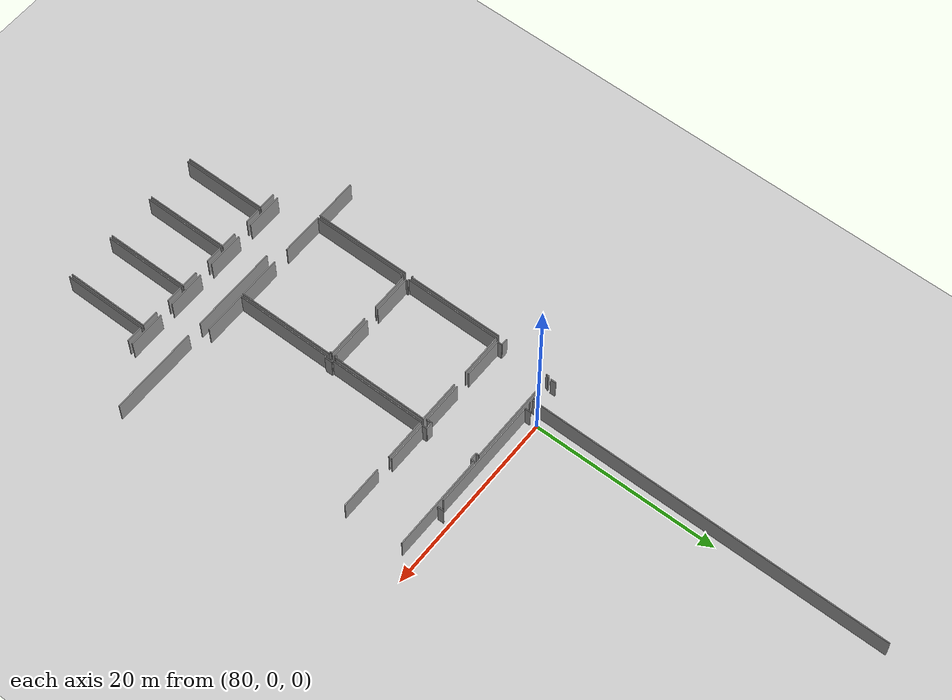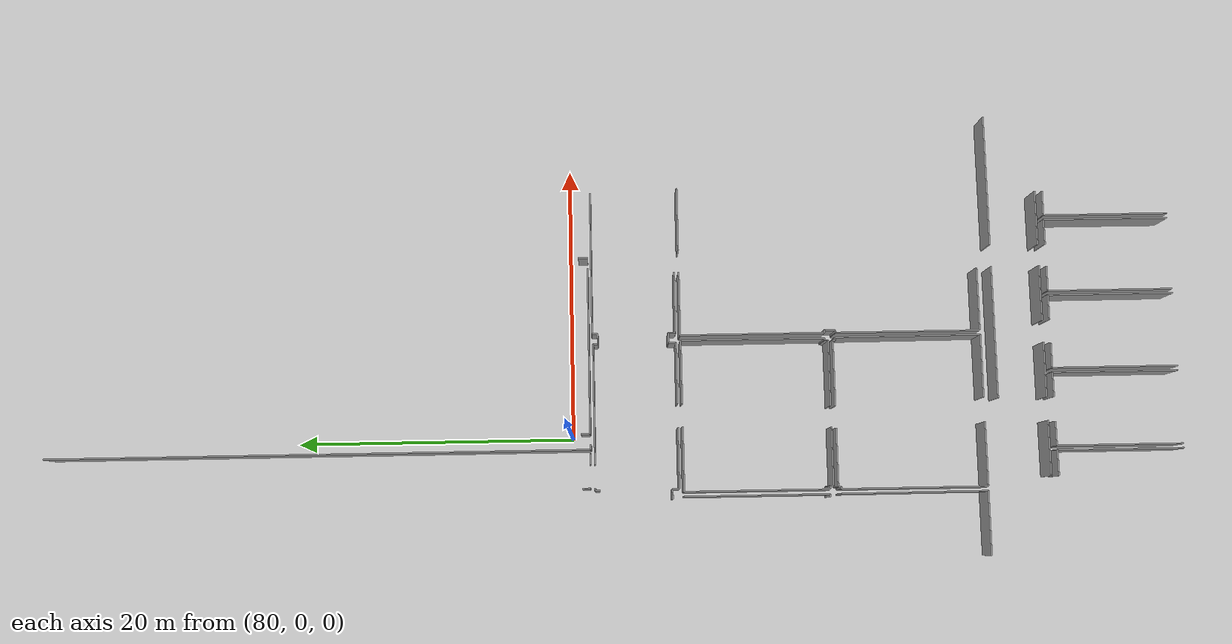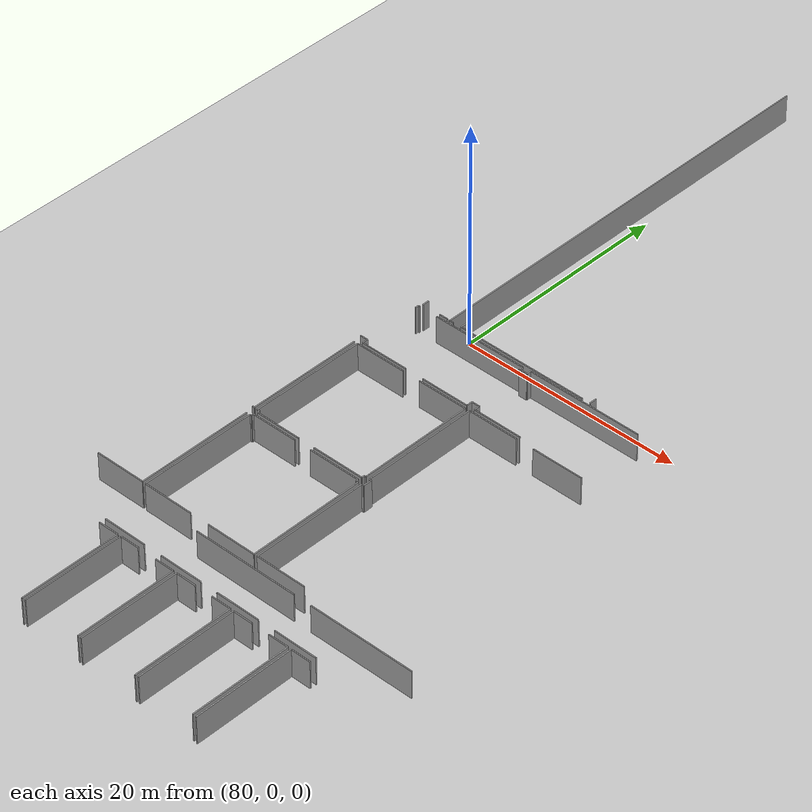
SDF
<sdf version="1.6">
 <world name="default">
  <model name="ground_plane">
   <static>1</static>
   <link name="link">
    <collision name="collision">
     <geometry><plane><normal>0 0 1</normal><size>100 100</size></plane></geometry>
     <surface><friction><ode><mu>100</mu><mu2>50</mu2></ode></friction></surface>
    </collision>
    <visual name="visual">
     <cast_shadows>0</cast_shadows>
     <geometry><plane><normal>0 0 1</normal><size>100 100</size></plane></geometry>
     <material>
      <script><uri>file://media/materials/scripts/gazebo.material</uri><name>Gazebo/Grey</name></script>
     </material>
    </visual>
   </link>
  </model>
  <model name="50015848">
   <static>1</static>
   <link name="Wall_559">
    <collision name="Wall_559_Collision">
     <geometry><box><size>0.348115116493 0.1 2.5</size></box></geometry>
     <pose>0.174057558246 0 1.25 0 0 0</pose>
    </collision>
    <visual name="Wall_559_Visual">
     <pose>0.174057558246 0 1.25 0 0 0</pose>
     <geometry><box><size>0.348115116493 0.1 2.5</size></box></geometry>
     <material>
      <script><uri>file://media/materials/scripts/gazebo.material</uri><name>Gazebo/Grey</name></script>
      <ambient>1 1 1 1</ambient>
     </material>
    </visual>
    <pose>208.043438271 -45.6472289707 0 0 0 1.57079632679</pose>
   </link>
   <link name="Wall_560">
    <collision name="Wall_560_Collision">
     <geometry><box><size>0.159595049762 0.1 2.5</size></box></geometry>
     <pose>0.0797975248812 0 1.25 0 0 0</pose>
    </collision>
    <visual name="Wall_560_Visual">
     <pose>0.0797975248812 0 1.25 0 0 0</pose>
     <geometry><box><size>0.159595049762 0.1 2.5</size></box></geometry>
     <material>
      <script><uri>file://media/materials/scripts/gazebo.material</uri><name>Gazebo/Grey</name></script>
      <ambient>1 1 1 1</ambient>
     </material>
    </visual>
    <pose>208.043438271 -45.2991138542 0 0 0 0.0</pose>
   </link>
   <link name="Wall_561">
    <collision name="Wall_561_Collision">
     <geometry><box><size>8.61407303567 0.1 2.5</size></box></geometry>
     <pose>4.30703651783 0 1.25 0 0 0</pose>
    </collision>
    <visual name="Wall_561_Visual">
     <pose>4.30703651783 0 1.25 0 0 0</pose>
     <geometry><box><size>8.61407303567 0.1 2.5</size></box></geometry>
     <material>
      <script><uri>file://media/materials/scripts/gazebo.material</uri><name>Gazebo/Grey</name></script>
      <ambient>1 1 1 1</ambient>
     </material>
    </visual>
    <pose>209.904788486 -45.2991138542 0 0 0 0.0</pose>
   </link>
   <link name="Wall_562">
    <collision name="Wall_562_Collision">
     <geometry><box><size>0.340756998141 0.1 2.5</size></box></geometry>
     <pose>0.170378499071 0 1.25 0 0 0</pose>
    </collision>
    <visual name="Wall_562_Visual">
     <pose>0.170378499071 0 1.25 0 0 0</pose>
     <geometry><box><size>0.340756998141 0.1 2.5</size></box></geometry>
     <material>
      <script><uri>file://media/materials/scripts/gazebo.material</uri><name>Gazebo/Grey</name></script>
      <ambient>1 1 1 1</ambient>
     </material>
    </visual>
    <pose>218.518861521 -45.2991138542 0 0 0 -1.57079632679</pose>
   </link>
   <link name="Wall_563">
    <collision name="Wall_563_Collision">
     <geometry><box><size>0.768796503625 0.1 2.5</size></box></geometry>
     <pose>0.384398251813 0 1.25 0 0 0</pose>
    </collision>
    <visual name="Wall_563_Visual">
     <pose>0.384398251813 0 1.25 0 0 0</pose>
     <geometry><box><size>0.768796503625 0.1 2.5</size></box></geometry>
     <material>
      <script><uri>file://media/materials/scripts/gazebo.material</uri><name>Gazebo/Grey</name></script>
      <ambient>1 1 1 1</ambient>
     </material>
    </visual>
    <pose>218.518861521 -45.6398708523 0 0 0 0.0</pose>
   </link>
   <link name="Wall_564">
    <collision name="Wall_564_Collision">
     <geometry><box><size>0.402920411801 0.1 2.5</size></box></geometry>
     <pose>0.2014602059 0 1.25 0 0 0</pose>
    </collision>
    <visual name="Wall_564_Visual">
     <pose>0.2014602059 0 1.25 0 0 0</pose>
     <geometry><box><size>0.402920411801 0.1 2.5</size></box></geometry>
     <material>
      <script><uri>file://media/materials/scripts/gazebo.material</uri><name>Gazebo/Grey</name></script>
      <ambient>1 1 1 1</ambient>
     </material>
    </visual>
    <pose>219.287658025 -45.6398708523 0 0 0 1.57079632679</pose>
   </link>
   <link name="Wall_565">
    <collision name="Wall_565_Collision">
     <geometry><box><size>10.3850960044 0.1 2.5</size></box></geometry>
     <pose>5.19254800221 0 1.25 0 0 0</pose>
    </collision>
    <visual name="Wall_565_Visual">
     <pose>5.19254800221 0 1.25 0 0 0</pose>
     <geometry><box><size>10.3850960044 0.1 2.5</size></box></geometry>
     <material>
      <script><uri>file://media/materials/scripts/gazebo.material</uri><name>Gazebo/Grey</name></script>
      <ambient>1 1 1 1</ambient>
     </material>
    </visual>
    <pose>219.287658025 -45.2369504405 0 0 0 0.0</pose>
   </link>
   <link name="Wall_589">
    <collision name="Wall_589_Collision">
     <geometry><box><size>4.42248285749 0.1 2.5</size></box></geometry>
     <pose>2.21124142874 0 1.25 0 0 0</pose>
    </collision>
    <visual name="Wall_589_Visual">
     <pose>2.21124142874 0 1.25 0 0 0</pose>
     <geometry><box><size>4.42248285749 0.1 2.5</size></box></geometry>
     <material>
      <script><uri>file://media/materials/scripts/gazebo.material</uri><name>Gazebo/Grey</name></script>
      <ambient>1 1 1 1</ambient>
     </material>
    </visual>
    <pose>223.697454472 -51.2571598932 0 0 0 3.14159265359</pose>
   </link>
   <link name="Wall_590">
    <collision name="Wall_590_Collision">
     <geometry><box><size>0.517351838578 0.1 2.5</size></box></geometry>
     <pose>0.258675919289 0 1.25 0 0 0</pose>
    </collision>
    <visual name="Wall_590_Visual">
     <pose>0.258675919289 0 1.25 0 0 0</pose>
     <geometry><box><size>0.517351838578 0.1 2.5</size></box></geometry>
     <material>
      <script><uri>file://media/materials/scripts/gazebo.material</uri><name>Gazebo/Grey</name></script>
      <ambient>1 1 1 1</ambient>
     </material>
    </visual>
    <pose>219.274971614 -51.2571598932 0 0 0 1.57079632679</pose>
   </link>
   <link name="Wall_591">
    <collision name="Wall_591_Collision">
     <geometry><box><size>0.733274552963 0.1 2.5</size></box></geometry>
     <pose>0.366637276481 0 1.25 0 0 0</pose>
    </collision>
    <visual name="Wall_591_Visual">
     <pose>0.366637276481 0 1.25 0 0 0</pose>
     <geometry><box><size>0.733274552963 0.1 2.5</size></box></geometry>
     <material>
      <script><uri>file://media/materials/scripts/gazebo.material</uri><name>Gazebo/Grey</name></script>
      <ambient>1 1 1 1</ambient>
     </material>
    </visual>
    <pose>219.274971614 -50.7398080546 0 0 0 3.14159265359</pose>
   </link>
   <link name="Wall_592">
    <collision name="Wall_592_Collision">
     <geometry><box><size>0.550590235269 0.1 2.5</size></box></geometry>
     <pose>0.275295117635 0 1.25 0 0 0</pose>
    </collision>
    <visual name="Wall_592_Visual">
     <pose>0.275295117635 0 1.25 0 0 0</pose>
     <geometry><box><size>0.550590235269 0.1 2.5</size></box></geometry>
     <material>
      <script><uri>file://media/materials/scripts/gazebo.material</uri><name>Gazebo/Grey</name></script>
      <ambient>1 1 1 1</ambient>
     </material>
    </visual>
    <pose>218.541697061 -50.7398080546 0 0 0 -1.57079632679</pose>
   </link>
   <link name="Wall_593">
    <collision name="Wall_593_Collision">
     <geometry><box><size>4.40472188216 0.1 2.5</size></box></geometry>
     <pose>2.20236094108 0 1.25 0 0 0</pose>
    </collision>
    <visual name="Wall_593_Visual">
     <pose>2.20236094108 0 1.25 0 0 0</pose>
     <geometry><box><size>4.40472188216 0.1 2.5</size></box></geometry>
     <material>
      <script><uri>file://media/materials/scripts/gazebo.material</uri><name>Gazebo/Grey</name></script>
      <ambient>1 1 1 1</ambient>
     </material>
    </visual>
    <pose>218.541697061 -51.2903982899 0 0 0 3.14159265359</pose>
   </link>
   <link name="Wall_594">
    <collision name="Wall_594_Collision">
     <geometry><box><size>4.36843874684 0.1 2.5</size></box></geometry>
     <pose>2.18421937342 0 1.25 0 0 0</pose>
    </collision>
    <visual name="Wall_594_Visual">
     <pose>2.18421937342 0 1.25 0 0 0</pose>
     <geometry><box><size>4.36843874684 0.1 2.5</size></box></geometry>
     <material>
      <script><uri>file://media/materials/scripts/gazebo.material</uri><name>Gazebo/Grey</name></script>
      <ambient>1 1 1 1</ambient>
     </material>
    </visual>
    <pose>212.431921547 -51.2903982899 0 0 0 3.14159265359</pose>
   </link>
   <link name="Wall_595">
    <collision name="Wall_595_Collision">
     <geometry><box><size>0.508725079131 0.1 2.5</size></box></geometry>
     <pose>0.254362539566 0 1.25 0 0 0</pose>
    </collision>
    <visual name="Wall_595_Visual">
     <pose>0.254362539566 0 1.25 0 0 0</pose>
     <geometry><box><size>0.508725079131 0.1 2.5</size></box></geometry>
     <material>
      <script><uri>file://media/materials/scripts/gazebo.material</uri><name>Gazebo/Grey</name></script>
      <ambient>1 1 1 1</ambient>
     </material>
    </visual>
    <pose>208.0634828 -51.2903982899 0 0 0 1.57079632679</pose>
   </link>
   <link name="Wall_596">
    <collision name="Wall_596_Collision">
     <geometry><box><size>0.728961173239 0.1 2.5</size></box></geometry>
     <pose>0.36448058662 0 1.25 0 0 0</pose>
    </collision>
    <visual name="Wall_596_Visual">
     <pose>0.36448058662 0 1.25 0 0 0</pose>
     <geometry><box><size>0.728961173239 0.1 2.5</size></box></geometry>
     <material>
      <script><uri>file://media/materials/scripts/gazebo.material</uri><name>Gazebo/Grey</name></script>
      <ambient>1 1 1 1</ambient>
     </material>
    </visual>
    <pose>208.0634828 -50.7816732107 0 0 0 3.14159265359</pose>
   </link>
   <link name="Wall_895">
    <collision name="Wall_895_Collision">
     <geometry><box><size>0.819542147429 0.1 2.5</size></box></geometry>
     <pose>0.409771073714 0 1.25 0 0 0</pose>
    </collision>
    <visual name="Wall_895_Visual">
     <pose>0.409771073714 0 1.25 0 0 0</pose>
     <geometry><box><size>0.819542147429 0.1 2.5</size></box></geometry>
     <material>
      <script><uri>file://media/materials/scripts/gazebo.material</uri><name>Gazebo/Grey</name></script>
      <ambient>1 1 1 1</ambient>
     </material>
    </visual>
    <pose>210.716718787 -44.9799237547 0 0 0 3.14159265359</pose>
   </link>
   <link name="Wall_896">
    <collision name="Wall_896_Collision">
     <geometry><box><size>0.58915692456 0.1 2.5</size></box></geometry>
     <pose>0.29457846228 0 1.25 0 0 0</pose>
    </collision>
    <visual name="Wall_896_Visual">
     <pose>0.29457846228 0 1.25 0 0 0</pose>
     <geometry><box><size>0.58915692456 0.1 2.5</size></box></geometry>
     <material>
      <script><uri>file://media/materials/scripts/gazebo.material</uri><name>Gazebo/Grey</name></script>
      <ambient>1 1 1 1</ambient>
     </material>
    </visual>
    <pose>208.205316875 -44.9799237547 0 0 0 1.57079632679</pose>
   </link>
   <link name="Wall_958">
    <collision name="Wall_958_Collision">
     <geometry><box><size>0.684051278473 0.1 2.5</size></box></geometry>
     <pose>0.342025639237 0 1.25 0 0 0</pose>
    </collision>
    <visual name="Wall_958_Visual">
     <pose>0.342025639237 0 1.25 0 0 0</pose>
     <geometry><box><size>0.684051278473 0.1 2.5</size></box></geometry>
     <material>
      <script><uri>file://media/materials/scripts/gazebo.material</uri><name>Gazebo/Grey</name></script>
      <ambient>1 1 1 1</ambient>
     </material>
    </visual>
    <pose>224.849380586 -45.0009831968 0 0 0 1.57079632679</pose>
   </link>
   <link name="Wall_961">
    <collision name="Wall_961_Collision">
     <geometry><box><size>12.0038820418 0.1 2.5</size></box></geometry>
     <pose>6.00194102088 0 1.25 0 0 0</pose>
    </collision>
    <visual name="Wall_961_Visual">
     <pose>6.00194102088 0 1.25 0 0 0</pose>
     <geometry><box><size>12.0038820418 0.1 2.5</size></box></geometry>
     <material>
      <script><uri>file://media/materials/scripts/gazebo.material</uri><name>Gazebo/Grey</name></script>
      <ambient>1 1 1 1</ambient>
     </material>
    </visual>
    <pose>224.088195929 -44.9842371344 0 0 0 3.14159265359</pose>
   </link>
   <link name="Wall_962">
    <collision name="Wall_962_Collision">
     <geometry><box><size>0.633813091107 0.1 2.5</size></box></geometry>
     <pose>0.316906545554 0 1.25 0 0 0</pose>
    </collision>
    <visual name="Wall_962_Visual">
     <pose>0.316906545554 0 1.25 0 0 0</pose>
     <geometry><box><size>0.633813091107 0.1 2.5</size></box></geometry>
     <material>
      <script><uri>file://media/materials/scripts/gazebo.material</uri><name>Gazebo/Grey</name></script>
      <ambient>1 1 1 1</ambient>
     </material>
    </visual>
    <pose>212.084313887 -44.9842371344 0 0 0 1.57079632679</pose>
   </link>
   <link name="Wall_965">
    <collision name="Wall_965_Collision">
     <geometry><box><size>0.375517764147 0.1 2.5</size></box></geometry>
     <pose>0.187758882073 0 1.25 0 0 0</pose>
    </collision>
    <visual name="Wall_965_Visual">
     <pose>0.187758882073 0 1.25 0 0 0</pose>
     <geometry><box><size>0.375517764147 0.1 2.5</size></box></geometry>
     <material>
      <script><uri>file://media/materials/scripts/gazebo.material</uri><name>Gazebo/Grey</name></script>
      <ambient>1 1 1 1</ambient>
     </material>
    </visual>
    <pose>211.333278359 -45.0177292593 0 0 0 3.14159265359</pose>
   </link>
   <link name="Wall_966">
    <collision name="Wall_966_Collision">
     <geometry><box><size>39.004877925 0.1 2.5</size></box></geometry>
     <pose>19.5024389625 0 1.25 0 0 0</pose>
    </collision>
    <visual name="Wall_966_Visual">
     <pose>19.5024389625 0 1.25 0 0 0</pose>
     <geometry><box><size>39.004877925 0.1 2.5</size></box></geometry>
     <material>
      <script><uri>file://media/materials/scripts/gazebo.material</uri><name>Gazebo/Grey</name></script>
      <ambient>1 1 1 1</ambient>
     </material>
    </visual>
    <pose>210.957760595 -45.0177292593 0 0 0 1.57079632679</pose>
   </link>
   <link name="Wall_1260">
    <collision name="Wall_1260_Collision">
     <geometry><box><size>4.58233163547 0.1 2.5</size></box></geometry>
     <pose>2.29116581773 0 1.25 0 0 0</pose>
    </collision>
    <visual name="Wall_1260_Visual">
     <pose>2.29116581773 0 1.25 0 0 0</pose>
     <geometry><box><size>4.58233163547 0.1 2.5</size></box></geometry>
     <material>
      <script><uri>file://media/materials/scripts/gazebo.material</uri><name>Gazebo/Grey</name></script>
      <ambient>1 1 1 1</ambient>
     </material>
    </visual>
    <pose>223.639096981 -73.1912032426 0 0 0 3.14159265359</pose>
   </link>
   <link name="Wall_1261">
    <collision name="Wall_1261_Collision">
     <geometry><box><size>10.411230011 0.1 2.5</size></box></geometry>
     <pose>5.20561500549 0 1.25 0 0 0</pose>
    </collision>
    <visual name="Wall_1261_Visual">
     <pose>5.20561500549 0 1.25 0 0 0</pose>
     <geometry><box><size>10.411230011 0.1 2.5</size></box></geometry>
     <material>
      <script><uri>file://media/materials/scripts/gazebo.material</uri><name>Gazebo/Grey</name></script>
      <ambient>1 1 1 1</ambient>
     </material>
    </visual>
    <pose>219.056765346 -73.1912032426 0 0 0 1.57079632679</pose>
   </link>
   <link name="Wall_1262">
    <collision name="Wall_1262_Collision">
     <geometry><box><size>0.200445293024 0.1 2.5</size></box></geometry>
     <pose>0.100222646512 0 1.25 0 0 0</pose>
    </collision>
    <visual name="Wall_1262_Visual">
     <pose>0.100222646512 0 1.25 0 0 0</pose>
     <geometry><box><size>0.200445293024 0.1 2.5</size></box></geometry>
     <material>
      <script><uri>file://media/materials/scripts/gazebo.material</uri><name>Gazebo/Grey</name></script>
      <ambient>1 1 1 1</ambient>
     </material>
    </visual>
    <pose>219.056765346 -62.7799732317 0 0 0 0.0</pose>
   </link>
   <link name="Wall_1263">
    <collision name="Wall_1263_Collision">
     <geometry><box><size>0.797975248812 0.1 2.5</size></box></geometry>
     <pose>0.398987624406 0 1.25 0 0 0</pose>
    </collision>
    <visual name="Wall_1263_Visual">
     <pose>0.398987624406 0 1.25 0 0 0</pose>
     <geometry><box><size>0.797975248812 0.1 2.5</size></box></geometry>
     <material>
      <script><uri>file://media/materials/scripts/gazebo.material</uri><name>Gazebo/Grey</name></script>
      <ambient>1 1 1 1</ambient>
     </material>
    </visual>
    <pose>219.257210639 -62.7799732317 0 0 0 1.57079632679</pose>
   </link>
   <link name="Wall_1264">
    <collision name="Wall_1264_Collision">
     <geometry><box><size>0.187758882073 0.1 2.5</size></box></geometry>
     <pose>0.0938794410367 0 1.25 0 0 0</pose>
    </collision>
    <visual name="Wall_1264_Visual">
     <pose>0.0938794410367 0 1.25 0 0 0</pose>
     <geometry><box><size>0.187758882073 0.1 2.5</size></box></geometry>
     <material>
      <script><uri>file://media/materials/scripts/gazebo.material</uri><name>Gazebo/Grey</name></script>
      <ambient>1 1 1 1</ambient>
     </material>
    </visual>
    <pose>219.257210639 -61.9819979829 0 0 0 3.14159265359</pose>
   </link>
   <link name="Wall_1265">
    <collision name="Wall_1265_Collision">
     <geometry><box><size>10.4013346104 0.1 2.5</size></box></geometry>
     <pose>5.20066730522 0 1.25 0 0 0</pose>
    </collision>
    <visual name="Wall_1265_Visual">
     <pose>5.20066730522 0 1.25 0 0 0</pose>
     <geometry><box><size>10.4013346104 0.1 2.5</size></box></geometry>
     <material>
      <script><uri>file://media/materials/scripts/gazebo.material</uri><name>Gazebo/Grey</name></script>
      <ambient>1 1 1 1</ambient>
     </material>
    </visual>
    <pose>219.069451757 -61.9819979829 0 0 0 1.57079632679</pose>
   </link>
   <link name="Wall_1266">
    <collision name="Wall_1266_Collision">
     <geometry><box><size>4.61277902175 0.1 2.5</size></box></geometry>
     <pose>2.30638951088 0 1.25 0 0 0</pose>
    </collision>
    <visual name="Wall_1266_Visual">
     <pose>2.30638951088 0 1.25 0 0 0</pose>
     <geometry><box><size>4.61277902175 0.1 2.5</size></box></geometry>
     <material>
      <script><uri>file://media/materials/scripts/gazebo.material</uri><name>Gazebo/Grey</name></script>
      <ambient>1 1 1 1</ambient>
     </material>
    </visual>
    <pose>219.069451757 -51.5806633724 0 0 0 0.0</pose>
   </link>
   <link name="Wall_1267">
    <collision name="Wall_1267_Collision">
     <geometry><box><size>4.64322640803 0.1 2.5</size></box></geometry>
     <pose>2.32161320402 0 1.25 0 0 0</pose>
    </collision>
    <visual name="Wall_1267_Visual">
     <pose>2.32161320402 0 1.25 0 0 0</pose>
     <geometry><box><size>4.64322640803 0.1 2.5</size></box></geometry>
     <material>
      <script><uri>file://media/materials/scripts/gazebo.material</uri><name>Gazebo/Grey</name></script>
      <ambient>1 1 1 1</ambient>
     </material>
    </visual>
    <pose>225.280718558 -51.5806633724 0 0 0 0.0</pose>
   </link>
   <link name="Wall_1273">
    <collision name="Wall_1273_Collision">
     <geometry><box><size>4.7294940025 0.1 2.5</size></box></geometry>
     <pose>2.36474700125 0 1.25 0 0 0</pose>
    </collision>
    <visual name="Wall_1273_Visual">
     <pose>2.36474700125 0 1.25 0 0 0</pose>
     <geometry><box><size>4.7294940025 0.1 2.5</size></box></geometry>
     <material>
      <script><uri>file://media/materials/scripts/gazebo.material</uri><name>Gazebo/Grey</name></script>
      <ambient>1 1 1 1</ambient>
     </material>
    </visual>
    <pose>218.523936086 -62.2344575608 0 0 0 3.14159265359</pose>
   </link>
   <link name="Wall_1274">
    <collision name="Wall_1274_Collision">
     <geometry><box><size>4.18879916777 0.1 2.5</size></box></geometry>
     <pose>2.09439958389 0 1.25 0 0 0</pose>
    </collision>
    <visual name="Wall_1274_Visual">
     <pose>2.09439958389 0 1.25 0 0 0</pose>
     <geometry><box><size>4.18879916777 0.1 2.5</size></box></geometry>
     <material>
      <script><uri>file://media/materials/scripts/gazebo.material</uri><name>Gazebo/Grey</name></script>
      <ambient>1 1 1 1</ambient>
     </material>
    </visual>
    <pose>212.269535487 -62.2344575608 0 0 0 3.14159265359</pose>
   </link>
   <link name="Wall_1275">
    <collision name="Wall_1275_Collision">
     <geometry><box><size>0.224549473831 0.1 2.5</size></box></geometry>
     <pose>0.112274736916 0 1.25 0 0 0</pose>
    </collision>
    <visual name="Wall_1275_Visual">
     <pose>0.112274736916 0 1.25 0 0 0</pose>
     <geometry><box><size>0.224549473831 0.1 2.5</size></box></geometry>
     <material>
      <script><uri>file://media/materials/scripts/gazebo.material</uri><name>Gazebo/Grey</name></script>
      <ambient>1 1 1 1</ambient>
     </material>
    </visual>
    <pose>208.080736319 -62.2344575608 0 0 0 1.57079632679</pose>
   </link>
   <link name="Wall_1276">
    <collision name="Wall_1276_Collision">
     <geometry><box><size>0.227086756021 0.1 2.5</size></box></geometry>
     <pose>0.113543378011 0 1.25 0 0 0</pose>
    </collision>
    <visual name="Wall_1276_Visual">
     <pose>0.113543378011 0 1.25 0 0 0</pose>
     <geometry><box><size>0.227086756021 0.1 2.5</size></box></geometry>
     <material>
      <script><uri>file://media/materials/scripts/gazebo.material</uri><name>Gazebo/Grey</name></script>
      <ambient>1 1 1 1</ambient>
     </material>
    </visual>
    <pose>208.080736319 -62.009908087 0 0 0 3.14159265359</pose>
   </link>
   <link name="Wall_1277">
    <collision name="Wall_1277_Collision">
     <geometry><box><size>10.4010808822 0.1 2.5</size></box></geometry>
     <pose>5.20054044111 0 1.25 0 0 0</pose>
    </collision>
    <visual name="Wall_1277_Visual">
     <pose>5.20054044111 0 1.25 0 0 0</pose>
     <geometry><box><size>10.4010808822 0.1 2.5</size></box></geometry>
     <material>
      <script><uri>file://media/materials/scripts/gazebo.material</uri><name>Gazebo/Grey</name></script>
      <ambient>1 1 1 1</ambient>
     </material>
    </visual>
    <pose>207.853649563 -62.009908087 0 0 0 1.57079632679</pose>
   </link>
   <link name="Wall_1278">
    <collision name="Wall_1278_Collision">
     <geometry><box><size>4.63409219215 0.1 2.5</size></box></geometry>
     <pose>2.31704609607 0 1.25 0 0 0</pose>
    </collision>
    <visual name="Wall_1278_Visual">
     <pose>2.31704609607 0 1.25 0 0 0</pose>
     <geometry><box><size>4.63409219215 0.1 2.5</size></box></geometry>
     <material>
      <script><uri>file://media/materials/scripts/gazebo.material</uri><name>Gazebo/Grey</name></script>
      <ambient>1 1 1 1</ambient>
     </material>
    </visual>
    <pose>207.853649563 -51.6088272047 0 0 0 0.0</pose>
   </link>
   <link name="Wall_1279">
    <collision name="Wall_1279_Collision">
     <geometry><box><size>4.57218250671 0.1 2.5</size></box></geometry>
     <pose>2.28609125335 0 1.25 0 0 0</pose>
    </collision>
    <visual name="Wall_1279_Visual">
     <pose>2.28609125335 0 1.25 0 0 0</pose>
     <geometry><box><size>4.57218250671 0.1 2.5</size></box></geometry>
     <material>
      <script><uri>file://media/materials/scripts/gazebo.material</uri><name>Gazebo/Grey</name></script>
      <ambient>1 1 1 1</ambient>
     </material>
    </visual>
    <pose>214.119214204 -51.6088272047 0 0 0 0.0</pose>
   </link>
   <link name="Wall_1280">
    <collision name="Wall_1280_Collision">
     <geometry><box><size>10.3587082696 0.1 2.5</size></box></geometry>
     <pose>5.17935413482 0 1.25 0 0 0</pose>
    </collision>
    <visual name="Wall_1280_Visual">
     <pose>5.17935413482 0 1.25 0 0 0</pose>
     <geometry><box><size>10.3587082696 0.1 2.5</size></box></geometry>
     <material>
      <script><uri>file://media/materials/scripts/gazebo.material</uri><name>Gazebo/Grey</name></script>
      <ambient>1 1 1 1</ambient>
     </material>
    </visual>
    <pose>218.69139671 -51.6088272047 0 0 0 -1.57079632679</pose>
   </link>
   <link name="Wall_1281">
    <collision name="Wall_1281_Collision">
     <geometry><box><size>0.152236931411 0.1 2.5</size></box></geometry>
     <pose>0.0761184657055 0 1.25 0 0 0</pose>
    </collision>
    <visual name="Wall_1281_Visual">
     <pose>0.0761184657055 0 1.25 0 0 0</pose>
     <geometry><box><size>0.152236931411 0.1 2.5</size></box></geometry>
     <material>
      <script><uri>file://media/materials/scripts/gazebo.material</uri><name>Gazebo/Grey</name></script>
      <ambient>1 1 1 1</ambient>
     </material>
    </visual>
    <pose>218.69139671 -61.9675354744 0 0 0 3.14159265359</pose>
   </link>
   <link name="Wall_1282">
    <collision name="Wall_1282_Collision">
     <geometry><box><size>0.267355869666 0.1 2.5</size></box></geometry>
     <pose>0.133677934833 0 1.25 0 0 0</pose>
    </collision>
    <visual name="Wall_1282_Visual">
     <pose>0.133677934833 0 1.25 0 0 0</pose>
     <geometry><box><size>0.267355869666 0.1 2.5</size></box></geometry>
     <material>
      <script><uri>file://media/materials/scripts/gazebo.material</uri><name>Gazebo/Grey</name></script>
      <ambient>1 1 1 1</ambient>
     </material>
    </visual>
    <pose>218.539159779 -61.9675354744 0 0 0 -1.6277688255</pose>
   </link>
   <link name="Wall_1283">
    <collision name="Wall_1283_Collision">
     <geometry><box><size>4.56888403986 0.1 2.5</size></box></geometry>
     <pose>2.28444201993 0 1.25 0 0 0</pose>
    </collision>
    <visual name="Wall_1283_Visual">
     <pose>2.28444201993 0 1.25 0 0 0</pose>
     <geometry><box><size>4.56888403986 0.1 2.5</size></box></geometry>
     <material>
      <script><uri>file://media/materials/scripts/gazebo.material</uri><name>Gazebo/Grey</name></script>
      <ambient>1 1 1 1</ambient>
     </material>
    </visual>
    <pose>207.545116049 -73.1912032426 0 0 0 3.14159265359</pose>
   </link>
   <link name="Wall_1292">
    <collision name="Wall_1292_Collision">
     <geometry><box><size>10.3812900811 0.1 2.5</size></box></geometry>
     <pose>5.19064504056 0 1.25 0 0 0</pose>
    </collision>
    <visual name="Wall_1292_Visual">
     <pose>5.19064504056 0 1.25 0 0 0</pose>
     <geometry><box><size>10.3812900811 0.1 2.5</size></box></geometry>
     <material>
      <script><uri>file://media/materials/scripts/gazebo.material</uri><name>Gazebo/Grey</name></script>
      <ambient>1 1 1 1</ambient>
     </material>
    </visual>
    <pose>207.51213138 -51.5951258809 0 0 0 -1.57079632679</pose>
   </link>
   <link name="Wall_1293">
    <collision name="Wall_1293_Collision">
     <geometry><box><size>0.198415467272 0.1 2.5</size></box></geometry>
     <pose>0.0992077336361 0 1.25 0 0 0</pose>
    </collision>
    <visual name="Wall_1293_Visual">
     <pose>0.0992077336361 0 1.25 0 0 0</pose>
     <geometry><box><size>0.198415467272 0.1 2.5</size></box></geometry>
     <material>
      <script><uri>file://media/materials/scripts/gazebo.material</uri><name>Gazebo/Grey</name></script>
      <ambient>1 1 1 1</ambient>
     </material>
    </visual>
    <pose>207.51213138 -61.976415962 0 0 0 3.14159265359</pose>
   </link>
   <link name="Wall_1296">
    <collision name="Wall_1296_Collision">
     <geometry><box><size>10.4394404922 0.1 2.5</size></box></geometry>
     <pose>5.2197202461 0 1.25 0 0 0</pose>
    </collision>
    <visual name="Wall_1296_Visual">
     <pose>5.2197202461 0 1.25 0 0 0</pose>
     <geometry><box><size>10.4394404922 0.1 2.5</size></box></geometry>
     <material>
      <script><uri>file://media/materials/scripts/gazebo.material</uri><name>Gazebo/Grey</name></script>
      <ambient>1 1 1 1</ambient>
     </material>
    </visual>
    <pose>207.513907478 -62.7518093994 0 0 0 -1.56780683541</pose>
   </link>
   <link name="Wall_1297">
    <collision name="Wall_1297_Collision">
     <geometry><box><size>4.54680968481 0.1 2.5</size></box></geometry>
     <pose>2.2734048424 0 1.25 0 0 0</pose>
    </collision>
    <visual name="Wall_1297_Visual">
     <pose>2.2734048424 0 1.25 0 0 0</pose>
     <geometry><box><size>4.54680968481 0.1 2.5</size></box></geometry>
     <material>
      <script><uri>file://media/materials/scripts/gazebo.material</uri><name>Gazebo/Grey</name></script>
      <ambient>1 1 1 1</ambient>
     </material>
    </visual>
    <pose>218.749754201 -73.2094716744 0 0 0 3.14159265359</pose>
   </link>
   <link name="Wall_1298">
    <collision name="Wall_1298_Collision">
     <geometry><box><size>4.59983888258 0.1 2.5</size></box></geometry>
     <pose>2.29991944129 0 1.25 0 0 0</pose>
    </collision>
    <visual name="Wall_1298_Visual">
     <pose>2.29991944129 0 1.25 0 0 0</pose>
     <geometry><box><size>4.59983888258 0.1 2.5</size></box></geometry>
     <material>
      <script><uri>file://media/materials/scripts/gazebo.material</uri><name>Gazebo/Grey</name></script>
      <ambient>1 1 1 1</ambient>
     </material>
    </visual>
    <pose>212.454757087 -73.2094716744 0 0 0 3.14159265359</pose>
   </link>
   <link name="Wall_1299">
    <collision name="Wall_1299_Collision">
     <geometry><box><size>10.4294984427 0.1 2.5</size></box></geometry>
     <pose>5.21474922137 0 1.25 0 0 0</pose>
    </collision>
    <visual name="Wall_1299_Visual">
     <pose>5.21474922137 0 1.25 0 0 0</pose>
     <geometry><box><size>10.4294984427 0.1 2.5</size></box></geometry>
     <material>
      <script><uri>file://media/materials/scripts/gazebo.material</uri><name>Gazebo/Grey</name></script>
      <ambient>1 1 1 1</ambient>
     </material>
    </visual>
    <pose>207.854918204 -73.2094716744 0 0 0 1.57079632679</pose>
   </link>
   <link name="Wall_1300">
    <collision name="Wall_1300_Collision">
     <geometry><box><size>0.174057558247 0.1 2.5</size></box></geometry>
     <pose>0.0870287791233 0 1.25 0 0 0</pose>
    </collision>
    <visual name="Wall_1300_Visual">
     <pose>0.0870287791233 0 1.25 0 0 0</pose>
     <geometry><box><size>0.174057558247 0.1 2.5</size></box></geometry>
     <material>
      <script><uri>file://media/materials/scripts/gazebo.material</uri><name>Gazebo/Grey</name></script>
      <ambient>1 1 1 1</ambient>
     </material>
    </visual>
    <pose>207.854918204 -62.7799732317 0 0 0 0.0</pose>
   </link>
   <link name="Wall_1301">
    <collision name="Wall_1301_Collision">
     <geometry><box><size>0.217698811918 0.1 2.5</size></box></geometry>
     <pose>0.108849405959 0 1.25 0 0 0</pose>
    </collision>
    <visual name="Wall_1301_Visual">
     <pose>0.108849405959 0 1.25 0 0 0</pose>
     <geometry><box><size>0.217698811918 0.1 2.5</size></box></geometry>
     <material>
      <script><uri>file://media/materials/scripts/gazebo.material</uri><name>Gazebo/Grey</name></script>
      <ambient>1 1 1 1</ambient>
     </material>
    </visual>
    <pose>208.028975763 -62.7799732317 0 0 0 1.57079632679</pose>
   </link>
   <link name="Wall_1302">
    <collision name="Wall_1302_Collision">
     <geometry><box><size>4.16444125875 0.1 2.5</size></box></geometry>
     <pose>2.08222062937 0 1.25 0 0 0</pose>
    </collision>
    <visual name="Wall_1302_Visual">
     <pose>2.08222062937 0 1.25 0 0 0</pose>
     <geometry><box><size>4.16444125875 0.1 2.5</size></box></geometry>
     <material>
      <script><uri>file://media/materials/scripts/gazebo.material</uri><name>Gazebo/Grey</name></script>
      <ambient>1 1 1 1</ambient>
     </material>
    </visual>
    <pose>208.028975763 -62.5622744198 0 0 0 0.0</pose>
   </link>
   <link name="Wall_1303">
    <collision name="Wall_1303_Collision">
     <geometry><box><size>4.7548668244 0.1 2.5</size></box></geometry>
     <pose>2.3774334122 0 1.25 0 0 0</pose>
    </collision>
    <visual name="Wall_1303_Visual">
     <pose>2.3774334122 0 1.25 0 0 0</pose>
     <geometry><box><size>4.7548668244 0.1 2.5</size></box></geometry>
     <material>
      <script><uri>file://media/materials/scripts/gazebo.material</uri><name>Gazebo/Grey</name></script>
      <ambient>1 1 1 1</ambient>
     </material>
    </visual>
    <pose>213.753845568 -62.5622744198 0 0 0 0.0</pose>
   </link>
   <link name="Wall_1304">
    <collision name="Wall_1304_Collision">
     <geometry><box><size>0.18877379495 0.1 2.5</size></box></geometry>
     <pose>0.0943868974748 0 1.25 0 0 0</pose>
    </collision>
    <visual name="Wall_1304_Visual">
     <pose>0.0943868974748 0 1.25 0 0 0</pose>
     <geometry><box><size>0.18877379495 0.1 2.5</size></box></geometry>
     <material>
      <script><uri>file://media/materials/scripts/gazebo.material</uri><name>Gazebo/Grey</name></script>
      <ambient>1 1 1 1</ambient>
     </material>
    </visual>
    <pose>218.508712393 -62.5622744198 0 0 0 -1.57079632679</pose>
   </link>
   <link name="Wall_1305">
    <collision name="Wall_1305_Collision">
     <geometry><box><size>0.210594421785 0.1 2.5</size></box></geometry>
     <pose>0.105297210893 0 1.25 0 0 0</pose>
    </collision>
    <visual name="Wall_1305_Visual">
     <pose>0.105297210893 0 1.25 0 0 0</pose>
     <geometry><box><size>0.210594421785 0.1 2.5</size></box></geometry>
     <material>
      <script><uri>file://media/materials/scripts/gazebo.material</uri><name>Gazebo/Grey</name></script>
      <ambient>1 1 1 1</ambient>
     </material>
    </visual>
    <pose>218.508712393 -62.7510482147 0 0 0 0.0</pose>
   </link>
   <link name="Wall_1306">
    <collision name="Wall_1306_Collision">
     <geometry><box><size>10.45846778 0.1 2.5</size></box></geometry>
     <pose>5.22923389002 0 1.25 0 0 0</pose>
    </collision>
    <visual name="Wall_1306_Visual">
     <pose>5.22923389002 0 1.25 0 0 0</pose>
     <geometry><box><size>10.45846778 0.1 2.5</size></box></geometry>
     <material>
      <script><uri>file://media/materials/scripts/gazebo.material</uri><name>Gazebo/Grey</name></script>
      <ambient>1 1 1 1</ambient>
     </material>
    </visual>
    <pose>218.719306815 -62.7510482147 0 0 0 -1.56788505624</pose>
   </link>
   <link name="Wall_1483">
    <collision name="Wall_1483_Collision">
     <geometry><box><size>9.57062842137 0.1 2.5</size></box></geometry>
     <pose>4.78531421068 0 1.25 0 0 0</pose>
    </collision>
    <visual name="Wall_1483_Visual">
     <pose>4.78531421068 0 1.25 0 0 0</pose>
     <geometry><box><size>9.57062842137 0.1 2.5</size></box></geometry>
     <material>
      <script><uri>file://media/materials/scripts/gazebo.material</uri><name>Gazebo/Grey</name></script>
      <ambient>1 1 1 1</ambient>
     </material>
    </visual>
    <pose>214.12682605 -74.2462051773 0 0 0 0.0</pose>
   </link>
   <link name="Wall_1484">
    <collision name="Wall_1484_Collision">
     <geometry><box><size>9.56809113918 0.1 2.5</size></box></geometry>
     <pose>4.78404556959 0 1.25 0 0 0</pose>
    </collision>
    <visual name="Wall_1484_Visual">
     <pose>4.78404556959 0 1.25 0 0 0</pose>
     <geometry><box><size>9.56809113918 0.1 2.5</size></box></geometry>
     <material>
      <script><uri>file://media/materials/scripts/gazebo.material</uri><name>Gazebo/Grey</name></script>
      <ambient>1 1 1 1</ambient>
     </material>
    </visual>
    <pose>225.303554098 -74.2462051773 0 0 0 0.0</pose>
   </link>
   <link name="Wall_1489">
    <collision name="Wall_1489_Collision">
     <geometry><box><size>3.97084662763 0.1 2.5</size></box></geometry>
     <pose>1.98542331382 0 1.25 0 0 0</pose>
    </collision>
    <visual name="Wall_1489_Visual">
     <pose>1.98542331382 0 1.25 0 0 0</pose>
     <geometry><box><size>3.97084662763 0.1 2.5</size></box></geometry>
     <material>
      <script><uri>file://media/materials/scripts/gazebo.material</uri><name>Gazebo/Grey</name></script>
      <ambient>1 1 1 1</ambient>
     </material>
    </visual>
    <pose>229.236341493 -77.7331920913 0 0 0 3.14159265359</pose>
   </link>
   <link name="Wall_1490">
    <collision name="Wall_1490_Collision">
     <geometry><box><size>4.04696509334 0.1 2.5</size></box></geometry>
     <pose>2.02348254667 0 1.25 0 0 0</pose>
    </collision>
    <visual name="Wall_1490_Visual">
     <pose>2.02348254667 0 1.25 0 0 0</pose>
     <geometry><box><size>4.04696509334 0.1 2.5</size></box></geometry>
     <material>
      <script><uri>file://media/materials/scripts/gazebo.material</uri><name>Gazebo/Grey</name></script>
      <ambient>1 1 1 1</ambient>
     </material>
    </visual>
    <pose>223.725364576 -77.7331920913 0 0 0 3.14159265359</pose>
   </link>
   <link name="Wall_1491">
    <collision name="Wall_1491_Collision">
     <geometry><box><size>3.96323478106 0.1 2.5</size></box></geometry>
     <pose>1.98161739053 0 1.25 0 0 0</pose>
    </collision>
    <visual name="Wall_1491_Visual">
     <pose>1.98161739053 0 1.25 0 0 0</pose>
     <geometry><box><size>3.96323478106 0.1 2.5</size></box></geometry>
     <material>
      <script><uri>file://media/materials/scripts/gazebo.material</uri><name>Gazebo/Grey</name></script>
      <ambient>1 1 1 1</ambient>
     </material>
    </visual>
    <pose>218.110359089 -77.7331920913 0 0 0 3.14159265359</pose>
   </link>
   <link name="Wall_1492">
    <collision name="Wall_1492_Collision">
     <geometry><box><size>3.95511547806 0.1 2.5</size></box></geometry>
     <pose>1.97755773903 0 1.25 0 0 0</pose>
    </collision>
    <visual name="Wall_1492_Visual">
     <pose>1.97755773903 0 1.25 0 0 0</pose>
     <geometry><box><size>3.95511547806 0.1 2.5</size></box></geometry>
     <material>
      <script><uri>file://media/materials/scripts/gazebo.material</uri><name>Gazebo/Grey</name></script>
      <ambient>1 1 1 1</ambient>
     </material>
    </visual>
    <pose>212.46998078 -77.7331920913 0 0 0 3.14159265359</pose>
   </link>
   <link name="Wall_1604">
    <collision name="Wall_1604_Collision">
     <geometry><box><size>1.85069362952 0.1 2.5</size></box></geometry>
     <pose>0.925346814759 0 1.25 0 0 0</pose>
    </collision>
    <visual name="Wall_1604_Visual">
     <pose>0.925346814759 0 1.25 0 0 0</pose>
     <geometry><box><size>1.85069362952 0.1 2.5</size></box></geometry>
     <material>
      <script><uri>file://media/materials/scripts/gazebo.material</uri><name>Gazebo/Grey</name></script>
      <ambient>1 1 1 1</ambient>
     </material>
    </visual>
    <pose>208.49811924 -78.2733794696 0 0 0 0.0</pose>
   </link>
   <link name="Wall_1605">
    <collision name="Wall_1605_Collision">
     <geometry><box><size>9.05049446389 0.1 2.5</size></box></geometry>
     <pose>4.52524723194 0 1.25 0 0 0</pose>
    </collision>
    <visual name="Wall_1605_Visual">
     <pose>4.52524723194 0 1.25 0 0 0</pose>
     <geometry><box><size>9.05049446389 0.1 2.5</size></box></geometry>
     <material>
      <script><uri>file://media/materials/scripts/gazebo.material</uri><name>Gazebo/Grey</name></script>
      <ambient>1 1 1 1</ambient>
     </material>
    </visual>
    <pose>210.348812869 -78.2733794696 0 0 0 -1.57219806403</pose>
   </link>
   <link name="Wall_1606">
    <collision name="Wall_1606_Collision">
     <geometry><box><size>9.04109762828 0.1 2.5</size></box></geometry>
     <pose>4.52054881414 0 1.25 0 0 0</pose>
    </collision>
    <visual name="Wall_1606_Visual">
     <pose>4.52054881414 0 1.25 0 0 0</pose>
     <geometry><box><size>9.04109762828 0.1 2.5</size></box></geometry>
     <material>
      <script><uri>file://media/materials/scripts/gazebo.material</uri><name>Gazebo/Grey</name></script>
      <ambient>1 1 1 1</ambient>
     </material>
    </visual>
    <pose>210.655824014 -87.2924027428 0 0 0 1.57079632679</pose>
   </link>
   <link name="Wall_1607">
    <collision name="Wall_1607_Collision">
     <geometry><box><size>1.74565014685 0.1 2.5</size></box></geometry>
     <pose>0.872825073423 0 1.25 0 0 0</pose>
    </collision>
    <visual name="Wall_1607_Visual">
     <pose>0.872825073423 0 1.25 0 0 0</pose>
     <geometry><box><size>1.74565014685 0.1 2.5</size></box></geometry>
     <material>
      <script><uri>file://media/materials/scripts/gazebo.material</uri><name>Gazebo/Grey</name></script>
      <ambient>1 1 1 1</ambient>
     </material>
    </visual>
    <pose>210.655824014 -78.2513051145 0 0 0 0.0</pose>
   </link>
   <link name="Wall_1608">
    <collision name="Wall_1608_Collision">
     <geometry><box><size>1.76594840437 0.1 2.5</size></box></geometry>
     <pose>0.882974202183 0 1.25 0 0 0</pose>
    </collision>
    <visual name="Wall_1608_Visual">
     <pose>0.882974202183 0 1.25 0 0 0</pose>
     <geometry><box><size>1.76594840437 0.1 2.5</size></box></geometry>
     <material>
      <script><uri>file://media/materials/scripts/gazebo.material</uri><name>Gazebo/Grey</name></script>
      <ambient>1 1 1 1</ambient>
     </material>
    </visual>
    <pose>214.144587026 -78.2513051145 0 0 0 0.0</pose>
   </link>
   <link name="Wall_1609">
    <collision name="Wall_1609_Collision">
     <geometry><box><size>9.04110652902 0.1 2.5</size></box></geometry>
     <pose>4.52055326451 0 1.25 0 0 0</pose>
    </collision>
    <visual name="Wall_1609_Visual">
     <pose>4.52055326451 0 1.25 0 0 0</pose>
     <geometry><box><size>9.04110652902 0.1 2.5</size></box></geometry>
     <material>
      <script><uri>file://media/materials/scripts/gazebo.material</uri><name>Gazebo/Grey</name></script>
      <ambient>1 1 1 1</ambient>
     </material>
    </visual>
    <pose>215.91053543 -78.2513051145 0 0 0 -1.56939313405</pose>
   </link>
   <link name="Wall_1610">
    <collision name="Wall_1610_Collision">
     <geometry><box><size>9.04718710553 0.1 2.5</size></box></geometry>
     <pose>4.52359355277 0 1.25 0 0 0</pose>
    </collision>
    <visual name="Wall_1610_Visual">
     <pose>4.52359355277 0 1.25 0 0 0</pose>
     <geometry><box><size>9.04718710553 0.1 2.5</size></box></geometry>
     <material>
      <script><uri>file://media/materials/scripts/gazebo.material</uri><name>Gazebo/Grey</name></script>
      <ambient>1 1 1 1</ambient>
     </material>
    </visual>
    <pose>216.237844833 -87.2974773072 0 0 0 1.57079632679</pose>
   </link>
   <link name="Wall_1611">
    <collision name="Wall_1611_Collision">
     <geometry><box><size>1.83699230569 0.1 2.5</size></box></geometry>
     <pose>0.918496152846 0 1.25 0 0 0</pose>
    </collision>
    <visual name="Wall_1611_Visual">
     <pose>0.918496152846 0 1.25 0 0 0</pose>
     <geometry><box><size>1.83699230569 0.1 2.5</size></box></geometry>
     <material>
      <script><uri>file://media/materials/scripts/gazebo.material</uri><name>Gazebo/Grey</name></script>
      <ambient>1 1 1 1</ambient>
     </material>
    </visual>
    <pose>216.237844833 -78.2502902017 0 0 0 0.0</pose>
   </link>
   <link name="Wall_1612">
    <collision name="Wall_1612_Collision">
     <geometry><box><size>1.82938045912 0.1 2.5</size></box></geometry>
     <pose>0.914690229561 0 1.25 0 0 0</pose>
    </collision>
    <visual name="Wall_1612_Visual">
     <pose>0.914690229561 0 1.25 0 0 0</pose>
     <geometry><box><size>1.82938045912 0.1 2.5</size></box></geometry>
     <material>
      <script><uri>file://media/materials/scripts/gazebo.material</uri><name>Gazebo/Grey</name></script>
      <ambient>1 1 1 1</ambient>
     </material>
    </visual>
    <pose>219.706309586 -78.2502902017 0 0 0 0.0</pose>
   </link>
   <link name="Wall_1613">
    <collision name="Wall_1613_Collision">
     <geometry><box><size>9.04719030764 0.1 2.5</size></box></geometry>
     <pose>4.52359515382 0 1.25 0 0 0</pose>
    </collision>
    <visual name="Wall_1613_Visual">
     <pose>4.52359515382 0 1.25 0 0 0</pose>
     <geometry><box><size>9.04719030764 0.1 2.5</size></box></geometry>
     <material>
      <script><uri>file://media/materials/scripts/gazebo.material</uri><name>Gazebo/Grey</name></script>
      <ambient>1 1 1 1</ambient>
     </material>
    </visual>
    <pose>221.535690046 -78.2502902017 0 0 0 -1.56995497747</pose>
   </link>
   <link name="Wall_1614">
    <collision name="Wall_1614_Collision">
     <geometry><box><size>9.00887414446 0.1 2.5</size></box></geometry>
     <pose>4.50443707223 0 1.25 0 0 0</pose>
    </collision>
    <visual name="Wall_1614_Visual">
     <pose>4.50443707223 0 1.25 0 0 0</pose>
     <geometry><box><size>9.00887414446 0.1 2.5</size></box></geometry>
     <material>
      <script><uri>file://media/materials/scripts/gazebo.material</uri><name>Gazebo/Grey</name></script>
      <ambient>1 1 1 1</ambient>
     </material>
    </visual>
    <pose>221.840163908 -87.2759104086 0 0 0 1.57079632679</pose>
   </link>
   <link name="Wall_1615">
    <collision name="Wall_1615_Collision">
     <geometry><box><size>1.80654491941 0.1 2.5</size></box></geometry>
     <pose>0.903272459705 0 1.25 0 0 0</pose>
    </collision>
    <visual name="Wall_1615_Visual">
     <pose>0.903272459705 0 1.25 0 0 0</pose>
     <geometry><box><size>1.80654491941 0.1 2.5</size></box></geometry>
     <material>
      <script><uri>file://media/materials/scripts/gazebo.material</uri><name>Gazebo/Grey</name></script>
      <ambient>1 1 1 1</ambient>
     </material>
    </visual>
    <pose>221.840163908 -78.2670362641 0 0 0 0.0</pose>
   </link>
   <link name="Wall_1616">
    <collision name="Wall_1616_Collision">
     <geometry><box><size>1.83952958788 0.1 2.5</size></box></geometry>
     <pose>0.919764793941 0 1.25 0 0 0</pose>
    </collision>
    <visual name="Wall_1616_Visual">
     <pose>0.919764793941 0 1.25 0 0 0</pose>
     <geometry><box><size>1.83952958788 0.1 2.5</size></box></geometry>
     <material>
      <script><uri>file://media/materials/scripts/gazebo.material</uri><name>Gazebo/Grey</name></script>
      <ambient>1 1 1 1</ambient>
     </material>
    </visual>
    <pose>225.262957583 -78.2670362641 0 0 0 0.0</pose>
   </link>
   <link name="Wall_1617">
    <collision name="Wall_1617_Collision">
     <geometry><box><size>9.00889701184 0.1 2.5</size></box></geometry>
     <pose>4.50444850592 0 1.25 0 0 0</pose>
    </collision>
    <visual name="Wall_1617_Visual">
     <pose>4.50444850592 0 1.25 0 0 0</pose>
     <geometry><box><size>9.00889701184 0.1 2.5</size></box></geometry>
     <material>
      <script><uri>file://media/materials/scripts/gazebo.material</uri><name>Gazebo/Grey</name></script>
      <ambient>1 1 1 1</ambient>
     </material>
    </visual>
    <pose>227.102487171 -78.2670362641 0 0 0 -1.5730494633</pose>
   </link>
   <link name="Wall_1618">
    <collision name="Wall_1618_Collision">
     <geometry><box><size>9.03653052033 0.1 2.5</size></box></geometry>
     <pose>4.51826526017 0 1.25 0 0 0</pose>
    </collision>
    <visual name="Wall_1618_Visual">
     <pose>4.51826526017 0 1.25 0 0 0</pose>
     <geometry><box><size>9.03653052033 0.1 2.5</size></box></geometry>
     <material>
      <script><uri>file://media/materials/scripts/gazebo.material</uri><name>Gazebo/Grey</name></script>
      <ambient>1 1 1 1</ambient>
     </material>
    </visual>
    <pose>227.422184727 -87.3109249028 0 0 0 1.57079632679</pose>
   </link>
   <link name="Wall_1619">
    <collision name="Wall_1619_Collision">
     <geometry><box><size>1.7837093797 0.1 2.5</size></box></geometry>
     <pose>0.891854689849 0 1.25 0 0 0</pose>
    </collision>
    <visual name="Wall_1619_Visual">
     <pose>0.891854689849 0 1.25 0 0 0</pose>
     <geometry><box><size>1.7837093797 0.1 2.5</size></box></geometry>
     <material>
      <script><uri>file://media/materials/scripts/gazebo.material</uri><name>Gazebo/Grey</name></script>
      <ambient>1 1 1 1</ambient>
     </material>
    </visual>
    <pose>227.422184727 -78.2743943825 0 0 0 0.0</pose>
   </link>
   <pose>-131.8 43.7717730528 0 0 0 0</pose>
  </model>
 </world>
</sdf>
